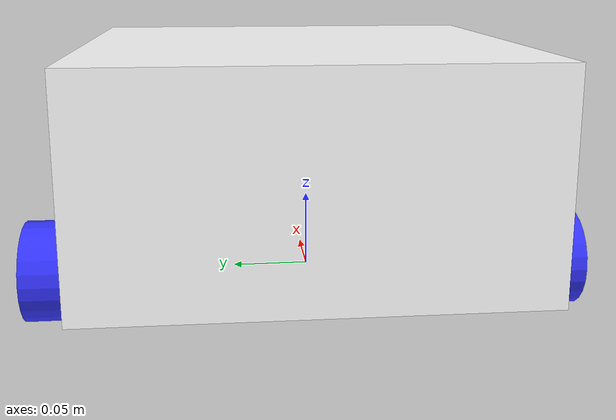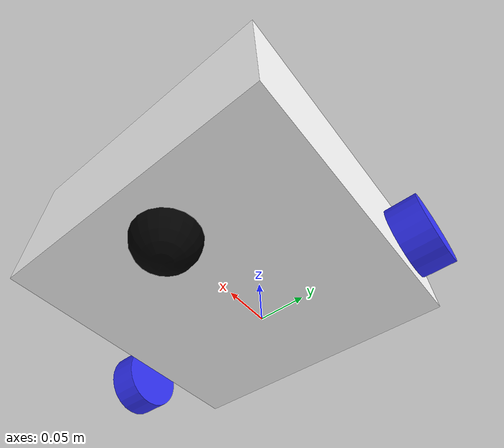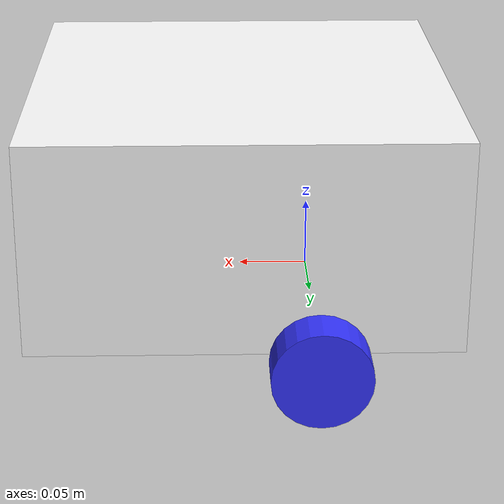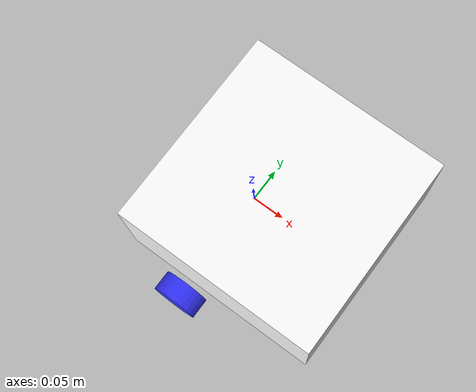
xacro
<?xml version="1.0"?>
<robot xmlns:xacro="http://www.ros.org/wiki/xacro">

    <xacro:include filename="inertial_macros.xacro"/>

    <!-- Define Colors -->
    <material name="white">
        <color rgba="1 1 1 1"/>
    </material>

    <material name="orange">
        <color rgba="1 0.3 0.1 1"/>
    </material>

    <material name="blue">
        <color rgba="0.2 0.2 1 1"/>
    </material>

    <material name="black">
        <color rgba="0 0 0 1"/>
    </material>

    <!-- Base Link -->
    <link name="base_link"/>

    <!-- Chassis -->
    <joint name="chassis_joint" type="fixed">
        <parent link="base_link"/>
        <child link="chassis"/>
        <origin xyz="-0.1 0 0"/>
    </joint>

    <link name="chassis">
        <visual>
            <origin xyz="0.15 0 0.075" rpy="0 0 0"/>
            <geometry>
                <box size="0.3 0.3 0.15"/>
            </geometry>
            <material name="white"/>
        </visual>
        <collision>
            <origin xyz="0.15 0 0.075" rpy="0 0 0"/>
            <geometry>
                <box size="0.3 0.3 0.15"/>
            </geometry>
        </collision>
        <xacro:inertial_box mass="0.5" x="0.3" y="0.3" z="0.15"/>
    </link>

    <!-- Left Wheel -->
    <joint name="left_wheel_joint" type="continuous">
        <parent link="base_link"/>
        <child link="left_wheel"/>
        <origin xyz="0 0.175 0" rpy="-${pi/2} 0 0"/>
        <axis xyz="0 0 1"/>
    </joint>

    <link name="left_wheel">
        <visual>
            <geometry>
                <cylinder radius="0.0342" length="0.03"/>
            </geometry>
            <material name="blue"/>
        </visual>
        <collision>
            <geometry>
                <cylinder radius="0.0342" length="0.03"/>
            </geometry>
        </collision>
        <xacro:inertial_cylinder mass="0.1" length="0.03" radius="0.0342"/>
    </link>

    <!-- Right Wheel -->
    <joint name="right_wheel_joint" type="continuous">
        <parent link="base_link"/>
        <child link="right_wheel"/>
        <origin xyz="0 -0.175 0" rpy="${pi/2} 0 0"/>
        <axis xyz="0 0 -1"/>
    </joint>

    <link name="right_wheel">
        <visual>
            <geometry>
                <cylinder radius="0.0342" length="0.03"/>
            </geometry>
            <material name="blue"/>
        </visual>
        <collision>
            <geometry>
                <cylinder radius="0.0342" length="0.03"/>
            </geometry>
        </collision>
        <xacro:inertial_cylinder mass="0.1" length="0.03" radius="0.0342"/>
    </link>

    <!-- Caster Wheel -->
    <joint name="caster_wheel_joint" type="fixed">
        <parent link="chassis"/>
        <child link="caster_wheel"/>
        <origin xyz="0.24 0 0" rpy="0 0 0"/>
    </joint>

    <link name="caster_wheel">
        <visual>
            <geometry>
                <sphere radius="0.0342"/>
            </geometry>
            <material name="black"/>
        </visual>
        <collision>
            <geometry>
                <sphere radius="0.0342"/>
            </geometry>
        </collision>
        <xacro:inertial_sphere mass="0.1" radius="0.0342"/>
    </link>

</robot>

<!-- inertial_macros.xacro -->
<robot xmlns:xacro="http://www.ros.org/wiki/xacro">

    <!-- Sphere Inertia Macro -->
    <xacro:macro name="inertial_sphere" params="mass radius">
        <inertial>
            <mass value="${mass}"/>
            <origin xyz="0 0 0" rpy="0 0 0"/>
            <inertia ixx="${(2/5) * mass * (radius * radius)}" ixy="0.0" ixz="0.0"
                    iyy="${(2/5) * mass * (radius * radius)}" iyz="0.0"
                    izz="${(2/5) * mass * (radius * radius)}"/>
        </inertial>
    </xacro:macro>

    <!-- Box Inertia Macro -->
    <xacro:macro name="inertial_box" params="mass x y z">
        <inertial>
            <mass value="${mass}"/>
            <origin xyz="0 0 0" rpy="0 0 0"/>
            <inertia ixx="${(1/12) * mass * (y * y + z * z)}" ixy="0.0" ixz="0.0"
                    iyy="${(1/12) * mass * (x * x + z * z)}" iyz="0.0"
                    izz="${(1/12) * mass * (x * x + y * y)}"/>
        </inertial>
    </xacro:macro>

    <!-- Cylinder Inertia Macro -->
    <xacro:macro name="inertial_cylinder" params="mass length radius">
        <inertial>
            <mass value="${mass}"/>
            <origin xyz="0 0 0" rpy="0 0 0"/>
            <inertia ixx="${(1/12) * mass * (3 * radius * radius + length * length)}" ixy="0.0" ixz="0.0"
                    iyy="${(1/12) * mass * (3 * radius * radius + length * length)}" iyz="0.0"
                    izz="${(1/2) * mass * (radius * radius)}"/>
        </inertial>
    </xacro:macro>

</robot>
